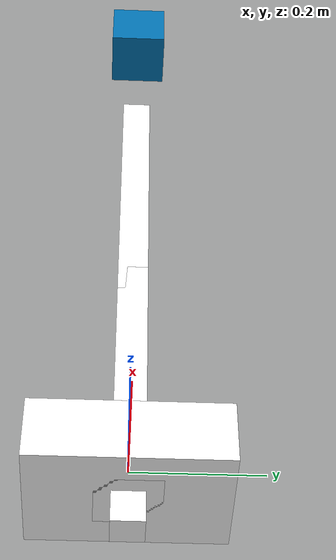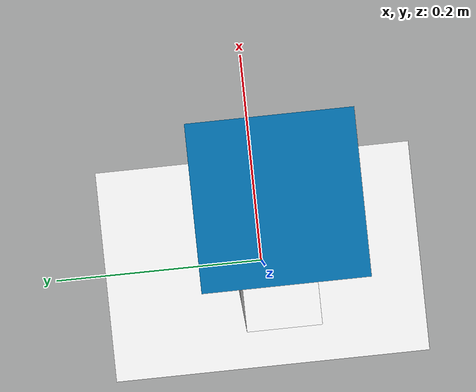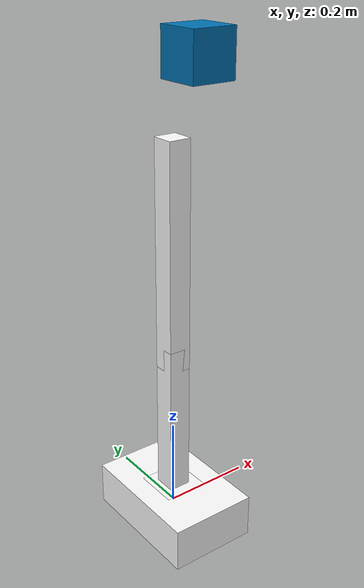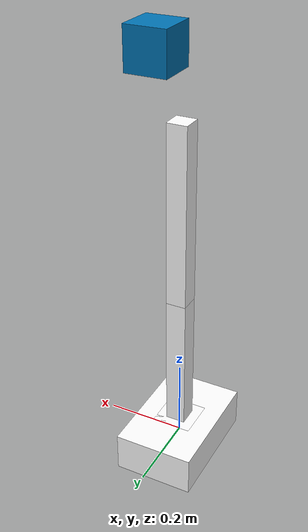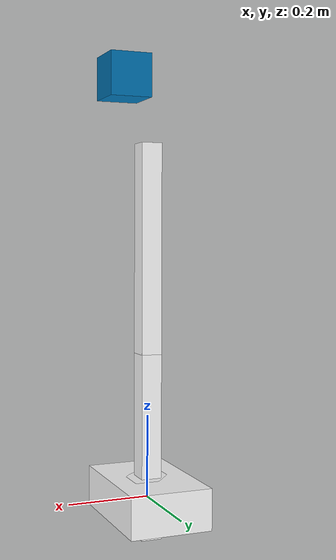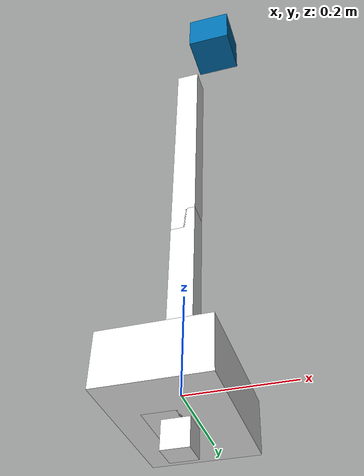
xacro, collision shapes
<?xml version="1.0"?>

<robot xmlns:xacro="http://www.ros.org/wiki/xacro" name="arm">

  <xacro:macro name="default_inertial" params="mass">
    <inertial>
      <mass value="${mass}" />
      <inertia ixx="1.0" ixy="0.0" ixz="0.0"
        iyy="1.0" iyz="0.0"
        izz="1.0" />
      </inertial>
    </xacro:macro>

    <link name="base_link">
      <visual>
        <geometry>
          <box size="0.2 .3 .1"/>
        </geometry>
        <origin rpy="0 0 1.54" xyz="0 0 0.05"/>
        <material name="white">
          <color rgba="1 1 1 1"/>
        </material>
      </visual>
      <collision>
        <geometry>
          <box size="0.2 .3 0.1"/>
        </geometry>
      </collision>
      <xacro:default_inertial mass="10"/>
    </link>

    <!-- arm -->
    <link name="arm_base">
      <visual>
        <geometry>
          <box size="0.1 .1 .1"/>
        </geometry>
        <origin rpy="0 0 0" xyz="0 0 0.1"/>
        <material name="white">
          <color rgba="1 1 1 1"/>
        </material>
      </visual>
      <collision>
        <geometry>
          <box size="0.1 .1 .1"/>
        </geometry>
      </collision>
      <xacro:default_inertial mass="1"/>
    </link>
    <joint name="base_to_arm_base" type="continuous">
      <parent link="base_link"/>
      <child link="arm_base"/>
      <axis xyz="0 0 1"/>
      <origin xyz="0 0 0"/>
    </joint>
    <link name="arm_1">
      <visual>
        <geometry>
          <box size="0.05 .05 0.5"/>
        </geometry>
        <origin rpy="0 0 0" xyz="0 0 0.25"/>
        <material name="white">
          <color rgba="1 1 1 1"/>
        </material>
      </visual>
      <collision>
        <geometry>
          <box size="0.05 .05 0.5"/>
        </geometry>
      </collision>
      <xacro:default_inertial mass="1"/>
    </link>
    <joint name="arm_1_to_arm_base" type="revolute">
      <parent link="arm_base"/>
      <child link="arm_1"/>
      <axis xyz="1 0 0"/>
      <origin xyz="0 0 0.15"/>
      <limit effort ="1000.0" lower="-1.0" upper="1.0" velocity="0.5"/>
    </joint>
    <link name="arm_2">
      <visual>
        <geometry>
          <box size="0.05 0.05 0.5"/>
        </geometry>
        <origin rpy="0 0 0" xyz="0.06 0 0.15"/>
        <material name="white">
          <color rgba="1 1 1 1"/>
        </material>
      </visual>
      <collision>
        <geometry>
          <box size="0.05 .05 0.5"/>
        </geometry>
      </collision>
      <xacro:default_inertial mass="1"/>
    </link>
    <joint name="arm_2_to_arm_1" type="revolute">
      <parent link="arm_1"/>
      <child link="arm_2"/>
      <axis xyz="1 0 0"/>
      <origin xyz="0.0 0 0.45"/>
      <limit effort ="1000.0" lower="-2.5" upper="2.5" velocity="0.5"/>
    </joint>
    <joint name="left_gripper_joint" type="revolute">
      <axis xyz="0 0 1"/>
      <limit effort="1000.0" lower="0.0" upper="0.548" velocity="0.5"/>
      <origin rpy="0 -1.57 0" xyz="0.06 0 0.4"/>
      <parent link="arm_2"/>
      <child link="left_gripper"/>
    </joint>
    <link name="left_gripper">
      <visual>
        <origin rpy="0 0 0" xyz="0 0 0"/>
        <geometry>
          <mesh filename="package://urdf_tutorial/meshes/l_finger.dae"/>
        </geometry>
      </visual>
      <collision>
        <geometry>
          <box size="0.1 .1 .1"/>
        </geometry>
      </collision>
      <xacro:default_inertial mass="1"/>
    </link>
    <joint name="left_tip_joint" type="fixed">
      <parent link="left_gripper"/>
      <child link="left_tip"/>
    </joint>
    <link name="left_tip">
      <visual>
        <origin rpy="0.0 0 0" xyz="0.09137 0.00495 0"/>
        <geometry>
          <mesh filename="package://urdf_tutorial/meshes/l_finger_tip.dae"/>
        </geometry>
      </visual>
      <collision>
        <geometry>
          <box size="0.1 .1 .1"/>
        </geometry>
      </collision>
      <xacro:default_inertial mass="1"/>
    </link>
    <joint name="right_gripper_joint" type="revolute">
      <axis xyz="0 0 -1"/>
      <limit effort="1000.0" lower="0.0" upper="0.548" velocity="0.5"/>
      <origin rpy="0 -1.57 0" xyz="0.06 0 0.4"/>
      <parent link="arm_2"/>
      <child link="right_gripper"/>
    </joint>
    <link name="right_gripper">
      <visual>
        <origin rpy="-3.1415 0 0" xyz="0 0 0"/>
        <geometry>
          <mesh filename="package://urdf_tutorial/meshes/l_finger.dae"/>
        </geometry>
      </visual>
      <collision>
        <geometry>
          <box size="0.1 .1 .1"/>
        </geometry>
      </collision>
      <xacro:default_inertial mass="1"/>
    </link>
    <joint name="right_tip_joint" type="fixed">
      <parent link="right_gripper"/>
      <child link="right_tip"/>
    </joint>
    <link name="right_tip">
      <visual>
        <origin rpy="-3.1415 0 0" xyz="0.09137 0.00495 0"/>
        <geometry>
          <mesh filename="package://urdf_tutorial/meshes/l_finger_tip.dae"/>
        </geometry>
      </visual>
      <collision>
        <geometry>
          <box size="0.1 .1 .1"/>
        </geometry>
      </collision>
      <xacro:default_inertial mass="1"/>
    </link>
  </robot>
